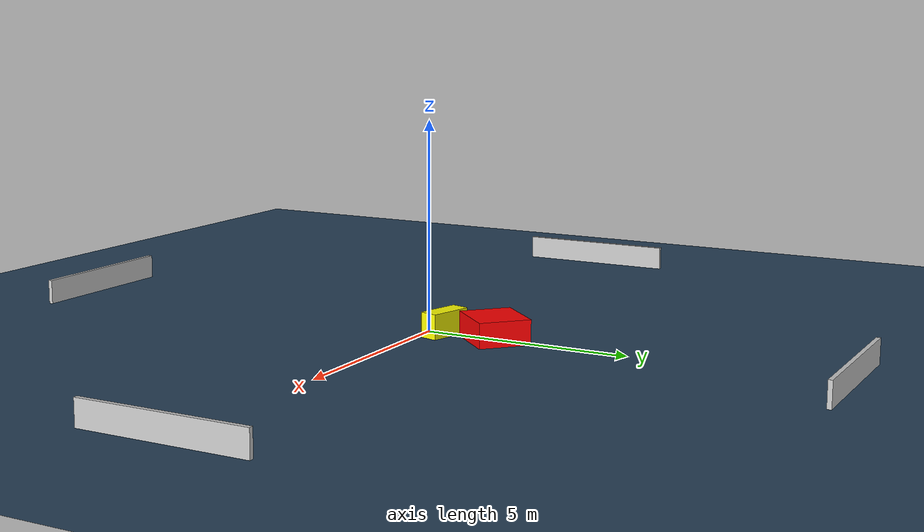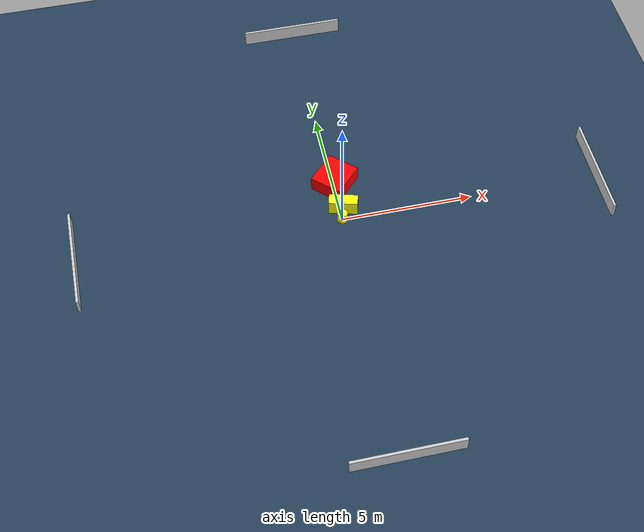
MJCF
<?xml version="1.0" ?>
<mujoco model="generated_environment">
  <option timestep="0.01" integrator="RK4" cone="elliptic"/>
  <default>
    <geom density="1"/>
  </default>
  <asset>
    <texture builtin="gradient" height="3072" name="skybox" rgb1="0.3 0.5 0.7" rgb2="0 0 0" type="skybox" width="512"/>
    <texture builtin="checker" height="300" name="groundplane" rgb1="0.2 0.3 0.4" rgb2="0.1 0.2 0.3" type="2d" width="300"/>
    <material name="groundplane" reflectance="0.2" texrepeat="5 5" texture="groundplane"/>
  </asset>
  <worldbody>
    <light dir="0 0 -1" directional="true" pos="0 0 1.5"/>
    <geom condim="3" friction="0.5 0.005 0.001" material="groundplane" name="floor" pos="0 0 0" size="0 0 0.05" type="plane"/>
    <body name="walls">
      <geom name="wall_1" condim="4" pos="-10.0 0.0 0.3" rgba="0.800000011920929 0.800000011920929 0.800000011920929 1.0" size="0.05 2.0 0.3" type="box"/>
      <geom name="wall_2" condim="4" pos="10.0 0.0 0.3" rgba="0.800000011920929 0.800000011920929 0.800000011920929 1.0" size="0.05 2.0 0.3" type="box"/>
      <geom name="wall_3" condim="4" pos="0.0 -10.0 0.3" rgba="0.800000011920929 0.800000011920929 0.800000011920929 1.0" size="2.0 0.05 0.3" type="box"/>
      <geom name="wall_4" condim="4" pos="0.0 10.0 0.3" rgba="0.800000011920929 0.800000011920929 0.800000011920929 1.0" size="2.0 0.05 0.3" type="box"/>
    </body>
    <body name="robot">
      <joint name="joint_x" type="slide" pos="0 0 0" axis="1 0 0"/>
      <joint name="joint_y" type="slide" pos="0 0 0" axis="0 1 0"/>
      <geom name="robot" type="cylinder" pos="0.0 0.0 0.2" size="0.2 0.2 0.0" mass="5.0" friction="1.0 0.005 0.0001" condim="4" rgba="1.0 1.0 0.0 1.0"/>
    </body>
    <body name="obstacle_1_movable">
      <geom name="obstacle_1_movable" condim="4" pos="0.1397532931573166 0.47822606698355247 0.3" euler="0 0 164.72088928733163" friction="0.0 0.005 0.001" rgba="1.0 1.0 0.0 1.0" size="0.547408504664687 0.2224325248439986 0.3" type="box" mass="0.1"/>
      <joint type="free"/>
    </body>
    <body name="obstacle_2_static">
      <geom name="obstacle_2_static" condim="4" pos="0.08001588030418925 1.7691307258963298 0.3" euler="0 0 316.7951306687981" friction="0.0 0.005 0.001" rgba="1.0 0.0 0.0 1.0" size="0.6248682628444071 0.6810179244206274 0.3" type="box"/>
    </body>
  </worldbody>
  <actuator>
    <motor name="actuator_x" joint="joint_x" gear="1" ctrlrange="-1 1"/>
    <motor name="actuator_y" joint="joint_y" gear="1" ctrlrange="-1 1"/>
  </actuator>
</mujoco>
